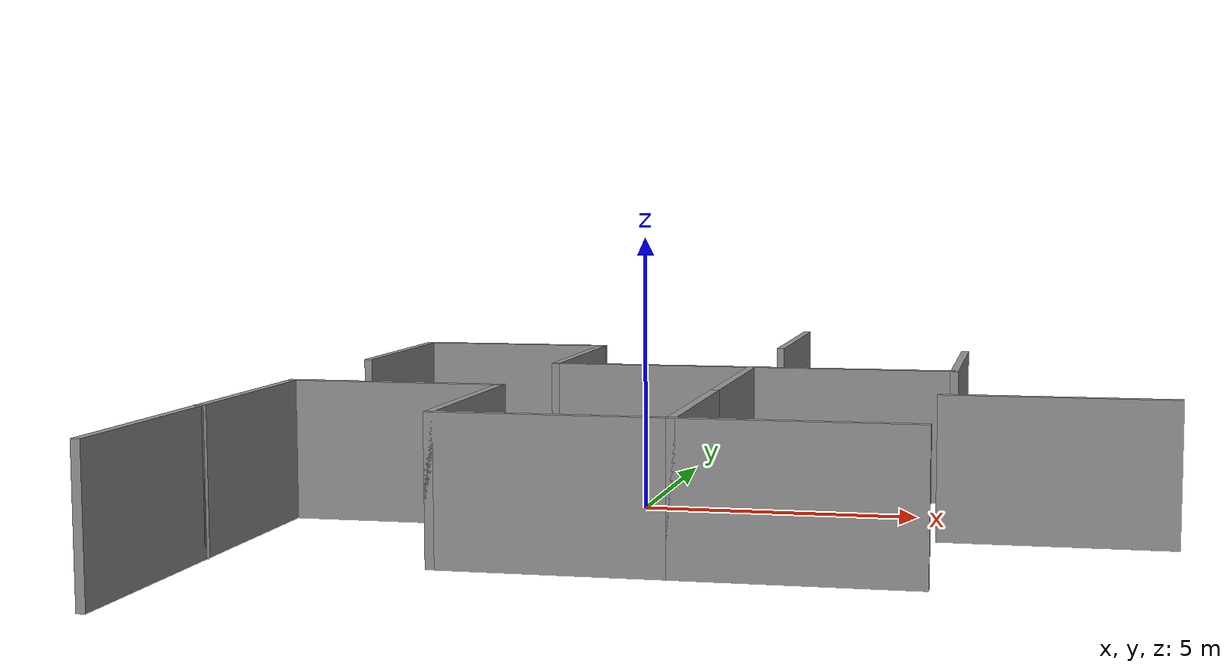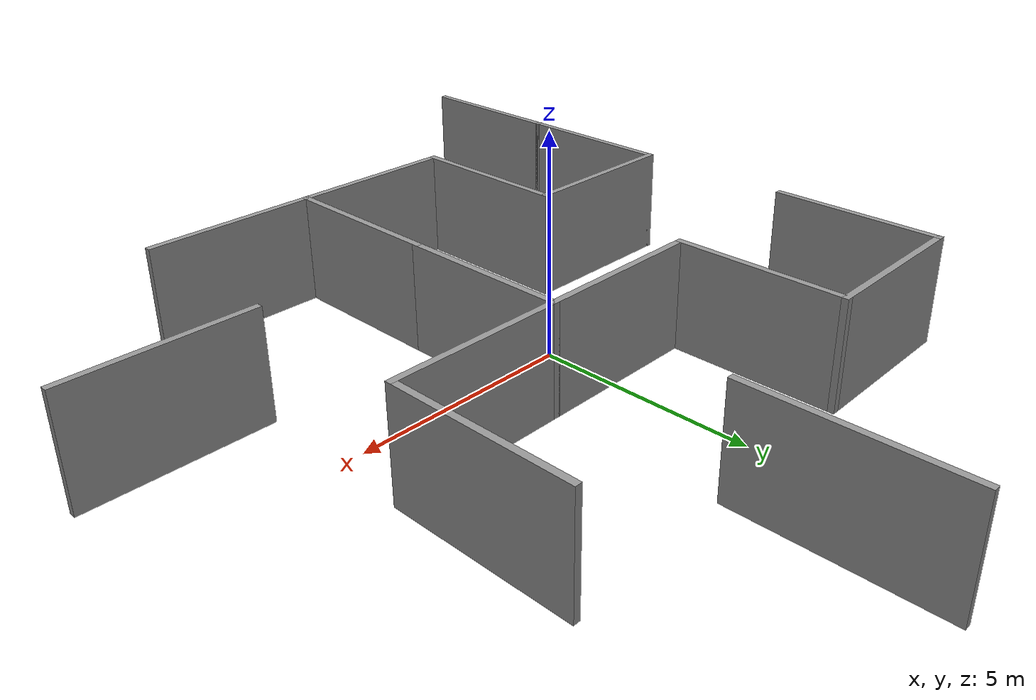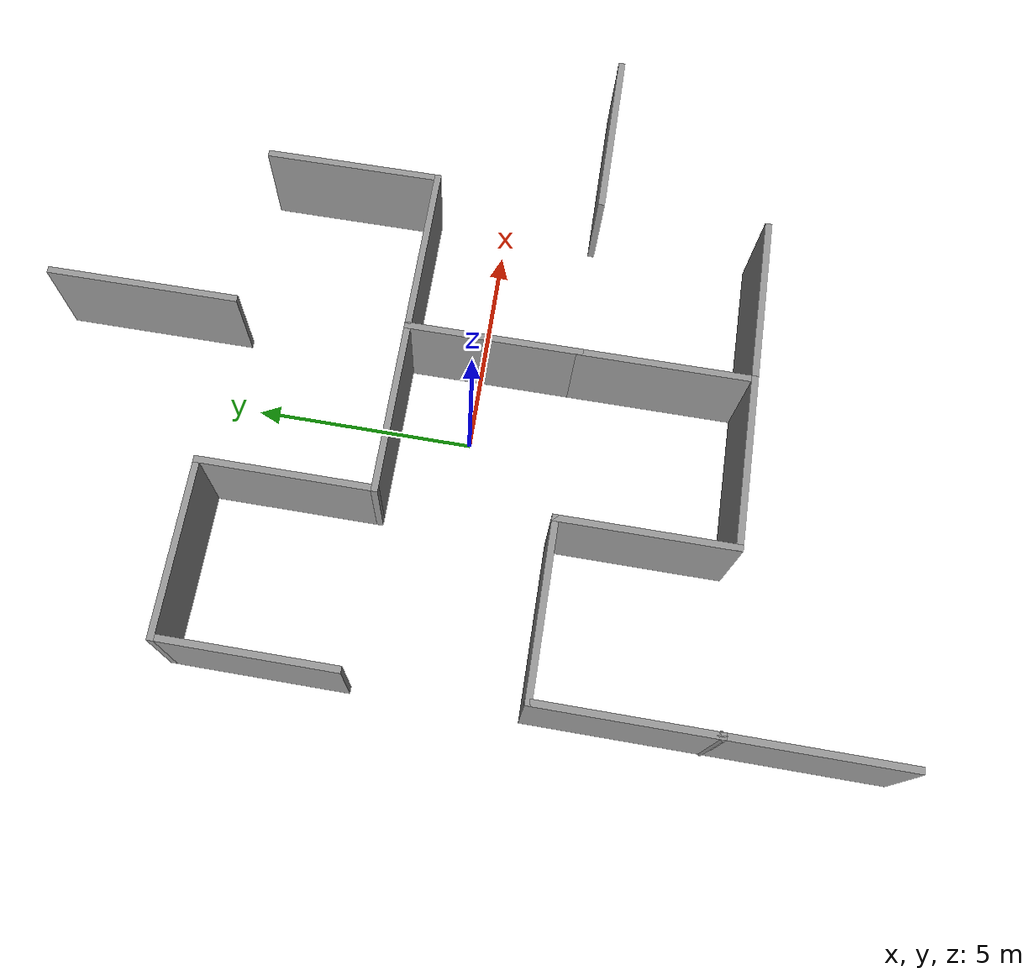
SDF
<?xml version='1.0'?>
<sdf version='1.6'>
  <model name='big_maze'>
    <pose frame=''>1.67513 0.024026 0 0 -0 0</pose>
    <link name='Wall_20'>
      <collision name='Wall_20_Collision'>
        <geometry>
          <box>
            <size>4 0.15 2.5</size>
          </box>
        </geometry>
        <pose frame=''>0 0 1.25 0 -0 0</pose>
      </collision>
      <visual name='Wall_20_Visual'>
        <pose frame=''>0 0 1.25 0 -0 0</pose>
        <geometry>
          <box>
            <size>4 0.15 2.5</size>
          </box>
        </geometry>
        <material>
          <script>
            <uri>file://media/materials/scripts/gazebo.material</uri>
            <name>Gazebo/Grey</name>
          </script>
          <ambient>1 1 1 1</ambient>
        </material>
      </visual>
      <pose frame=''>-7.6804 -4.1 0 0 -0 1.5708</pose>
    </link>
    <link name='Wall_21'>
      <collision name='Wall_21_Collision'>
        <geometry>
          <box>
            <size>4 0.15 2.5</size>
          </box>
        </geometry>
        <pose frame=''>0 0 1.25 0 -0 0</pose>
      </collision>
      <visual name='Wall_21_Visual'>
        <pose frame=''>0 0 1.25 0 -0 0</pose>
        <geometry>
          <box>
            <size>4 0.15 2.5</size>
          </box>
        </geometry>
        <material>
          <script>
            <uri>file://media/materials/scripts/gazebo.material</uri>
            <name>Gazebo/Grey</name>
          </script>
          <ambient>1 1 1 1</ambient>
        </material>
      </visual>
      <pose frame=''>-5.7554 -2.175 0 0 -0 0</pose>
    </link>
    <link name='Wall_22'>
      <collision name='Wall_22_Collision'>
        <geometry>
          <box>
            <size>4 0.15 2.5</size>
          </box>
        </geometry>
        <pose frame=''>0 0 1.25 0 -0 0</pose>
      </collision>
      <visual name='Wall_22_Visual'>
        <pose frame=''>0 0 1.25 0 -0 0</pose>
        <geometry>
          <box>
            <size>4 0.15 2.5</size>
          </box>
        </geometry>
        <material>
          <script>
            <uri>file://media/materials/scripts/gazebo.material</uri>
            <name>Gazebo/Grey</name>
          </script>
          <ambient>1 1 1 1</ambient>
        </material>
      </visual>
      <pose frame=''>-3.8304 -4.1 0 0 0 -1.5708</pose>
    </link>
    <link name='Wall_23'>
      <collision name='Wall_23_Collision'>
        <geometry>
          <box>
            <size>4 0.15 2.5</size>
          </box>
        </geometry>
        <pose frame=''>0 0 1.25 0 -0 0</pose>
      </collision>
      <visual name='Wall_23_Visual'>
        <pose frame=''>0 0 1.25 0 -0 0</pose>
        <geometry>
          <box>
            <size>4 0.15 2.5</size>
          </box>
        </geometry>
        <material>
          <script>
            <uri>file://media/materials/scripts/gazebo.material</uri>
            <name>Gazebo/Grey</name>
          </script>
          <ambient>1 1 1 1</ambient>
        </material>
      </visual>
      <pose frame=''>-1.9054 -6.025 0 0 -0 0</pose>
    </link>
    <link name='Wall_24'>
      <collision name='Wall_24_Collision'>
        <geometry>
          <box>
            <size>4 0.15 2.5</size>
          </box>
        </geometry>
        <pose frame=''>0 0 1.25 0 -0 0</pose>
      </collision>
      <visual name='Wall_24_Visual'>
        <pose frame=''>0 0 1.25 0 -0 0</pose>
        <geometry>
          <box>
            <size>4 0.15 2.5</size>
          </box>
        </geometry>
        <material>
          <script>
            <uri>file://media/materials/scripts/gazebo.material</uri>
            <name>Gazebo/Grey</name>
          </script>
          <ambient>1 1 1 1</ambient>
        </material>
      </visual>
      <pose frame=''>0.019597 -4.1 0 0 -0 1.5708</pose>
    </link>
    <link name='Wall_25'>
      <collision name='Wall_25_Collision'>
        <geometry>
          <box>
            <size>4 0.15 2.5</size>
          </box>
        </geometry>
        <pose frame=''>0 0 1.25 0 -0 0</pose>
      </collision>
      <visual name='Wall_25_Visual'>
        <pose frame=''>0 0 1.25 0 -0 0</pose>
        <geometry>
          <box>
            <size>4 0.15 2.5</size>
          </box>
        </geometry>
        <material>
          <script>
            <uri>file://media/materials/scripts/gazebo.material</uri>
            <name>Gazebo/Grey</name>
          </script>
          <ambient>1 1 1 1</ambient>
        </material>
      </visual>
      <pose frame=''>0.019597 -0.25 0 0 -0 1.5708</pose>
    </link>
    <link name='Wall_27'>
      <collision name='Wall_27_Collision'>
        <geometry>
          <box>
            <size>4 0.15 2.5</size>
          </box>
        </geometry>
        <pose frame=''>0 0 1.25 0 -0 0</pose>
      </collision>
      <visual name='Wall_27_Visual'>
        <pose frame=''>0 0 1.25 0 -0 0</pose>
        <geometry>
          <box>
            <size>4 0.15 2.5</size>
          </box>
        </geometry>
        <material>
          <script>
            <uri>file://media/materials/scripts/gazebo.material</uri>
            <name>Gazebo/Grey</name>
          </script>
          <ambient>1 1 1 1</ambient>
        </material>
      </visual>
      <pose frame=''>-1.9054 1.675 0 0 -0 3.14159</pose>
    </link>
    <link name='Wall_29'>
      <collision name='Wall_29_Collision'>
        <geometry>
          <box>
            <size>4 0.15 2.5</size>
          </box>
        </geometry>
        <pose frame=''>0 0 1.25 0 -0 0</pose>
      </collision>
      <visual name='Wall_29_Visual'>
        <pose frame=''>0 0 1.25 0 -0 0</pose>
        <geometry>
          <box>
            <size>4 0.15 2.5</size>
          </box>
        </geometry>
        <material>
          <script>
            <uri>file://media/materials/scripts/gazebo.material</uri>
            <name>Gazebo/Grey</name>
          </script>
          <ambient>1 1 1 1</ambient>
        </material>
      </visual>
      <pose frame=''>1.9446 -6.025 0 0 -0 0</pose>
    </link>
    <link name='Wall_31'>
      <collision name='Wall_31_Collision'>
        <geometry>
          <box>
            <size>4 0.15 2.5</size>
          </box>
        </geometry>
        <pose frame=''>0 0 1.25 0 -0 0</pose>
      </collision>
      <visual name='Wall_31_Visual'>
        <pose frame=''>0 0 1.25 0 -0 0</pose>
        <geometry>
          <box>
            <size>4 0.15 2.5</size>
          </box>
        </geometry>
        <material>
          <script>
            <uri>file://media/materials/scripts/gazebo.material</uri>
            <name>Gazebo/Grey</name>
          </script>
          <ambient>1 1 1 1</ambient>
        </material>
      </visual>
      <pose frame=''>5.7946 -2.175 0 0 -0 0</pose>
    </link>
    <link name='Wall_33'>
      <collision name='Wall_33_Collision'>
        <geometry>
          <box>
            <size>4 0.15 2.5</size>
          </box>
        </geometry>
        <pose frame=''>0 0 1.25 0 -0 0</pose>
      </collision>
      <visual name='Wall_33_Visual'>
        <pose frame=''>0 0 1.25 0 -0 0</pose>
        <geometry>
          <box>
            <size>4 0.15 2.5</size>
          </box>
        </geometry>
        <material>
          <script>
            <uri>file://media/materials/scripts/gazebo.material</uri>
            <name>Gazebo/Grey</name>
          </script>
          <ambient>1 1 1 1</ambient>
        </material>
      </visual>
      <pose frame=''>1.9446 1.675 0 0 -0 0</pose>
    </link>
    <link name='Wall_35'>
      <collision name='Wall_35_Collision'>
        <geometry>
          <box>
            <size>4.10554 0.15 2.5</size>
          </box>
        </geometry>
        <pose frame=''>0 0 1.25 0 -0 0</pose>
      </collision>
      <visual name='Wall_35_Visual'>
        <pose frame=''>0 0 1.25 0 -0 0</pose>
        <geometry>
          <box>
            <size>4.10554 0.15 2.5</size>
          </box>
        </geometry>
        <material>
          <script>
            <uri>file://media/materials/scripts/gazebo.material</uri>
            <name>Gazebo/Grey</name>
          </script>
          <ambient>1 1 1 1</ambient>
        </material>
      </visual>
      <pose frame=''>3.8696 3.65277 0 0 -0 1.5708</pose>
    </link>
    <link name='Wall_37'>
      <collision name='Wall_37_Collision'>
        <geometry>
          <box>
            <size>4.39446 0.15 2.5</size>
          </box>
        </geometry>
        <pose frame=''>0 0 1.25 0 -0 0</pose>
      </collision>
      <visual name='Wall_37_Visual'>
        <pose frame=''>0 0 1.25 0 -0 0</pose>
        <geometry>
          <box>
            <size>4.39446 0.15 2.5</size>
          </box>
        </geometry>
        <material>
          <script>
            <uri>file://media/materials/scripts/gazebo.material</uri>
            <name>Gazebo/Grey</name>
          </script>
          <ambient>1 1 1 1</ambient>
        </material>
      </visual>
      <pose frame=''>0.019597 7.75277 0 0 -0 1.5708</pose>
    </link>
    <link name='Wall_39'>
      <collision name='Wall_39_Collision'>
        <geometry>
          <box>
            <size>4 0.15 2.5</size>
          </box>
        </geometry>
        <pose frame=''>0 0 1.25 0 -0 0</pose>
      </collision>
      <visual name='Wall_39_Visual'>
        <pose frame=''>0 0 1.25 0 -0 0</pose>
        <geometry>
          <box>
            <size>4 0.15 2.5</size>
          </box>
        </geometry>
        <material>
          <script>
            <uri>file://media/materials/scripts/gazebo.material</uri>
            <name>Gazebo/Grey</name>
          </script>
          <ambient>1 1 1 1</ambient>
        </material>
      </visual>
      <pose frame=''>-3.8304 3.6 0 0 -0 1.5708</pose>
    </link>
    <link name='Wall_4'>
      <collision name='Wall_4_Collision'>
        <geometry>
          <box>
            <size>0.163988 0.15 2.5</size>
          </box>
        </geometry>
        <pose frame=''>0 0 1.25 0 -0 0</pose>
      </collision>
      <visual name='Wall_4_Visual'>
        <pose frame=''>0 0 1.25 0 -0 0</pose>
        <geometry>
          <box>
            <size>0.163988 0.15 2.5</size>
          </box>
        </geometry>
        <material>
          <script>
            <uri>file://media/materials/scripts/gazebo.material</uri>
            <name>Gazebo/Grey</name>
          </script>
          <ambient>1 1 1 1</ambient>
        </material>
      </visual>
      <pose frame=''>-7.68478 -6.01034 0 0 -0 0.894407</pose>
    </link>
    <link name='Wall_40'>
      <collision name='Wall_40_Collision'>
        <geometry>
          <box>
            <size>4 0.15 2.5</size>
          </box>
        </geometry>
        <pose frame=''>0 0 1.25 0 -0 0</pose>
      </collision>
      <visual name='Wall_40_Visual'>
        <pose frame=''>0 0 1.25 0 -0 0</pose>
        <geometry>
          <box>
            <size>4 0.15 2.5</size>
          </box>
        </geometry>
        <material>
          <script>
            <uri>file://media/materials/scripts/gazebo.material</uri>
            <name>Gazebo/Grey</name>
          </script>
          <ambient>1 1 1 1</ambient>
        </material>
      </visual>
      <pose frame=''>-5.7554 5.525 0 0 -0 3.14159</pose>
    </link>
    <link name='Wall_41'>
      <collision name='Wall_41_Collision'>
        <geometry>
          <box>
            <size>4 0.15 2.5</size>
          </box>
        </geometry>
        <pose frame=''>0 0 1.25 0 -0 0</pose>
      </collision>
      <visual name='Wall_41_Visual'>
        <pose frame=''>0 0 1.25 0 -0 0</pose>
        <geometry>
          <box>
            <size>4 0.15 2.5</size>
          </box>
        </geometry>
        <material>
          <script>
            <uri>file://media/materials/scripts/gazebo.material</uri>
            <name>Gazebo/Grey</name>
          </script>
          <ambient>1 1 1 1</ambient>
        </material>
      </visual>
      <pose frame=''>-7.6804 3.6 0 0 0 -1.5708</pose>
    </link>
    <link name='Wall_43'>
      <collision name='Wall_43_Collision'>
        <geometry>
          <box>
            <size>4 0.15 2.5</size>
          </box>
        </geometry>
        <pose frame=''>0 0 1.25 0 -0 0</pose>
      </collision>
      <visual name='Wall_43_Visual'>
        <pose frame=''>0 0 1.25 0 -0 0</pose>
        <geometry>
          <box>
            <size>4 0.15 2.5</size>
          </box>
        </geometry>
        <material>
          <script>
            <uri>file://media/materials/scripts/gazebo.material</uri>
            <name>Gazebo/Grey</name>
          </script>
          <ambient>1 1 1 1</ambient>
        </material>
      </visual>
      <pose frame=''>-7.6804 -7.95 0 0 0 -1.5708</pose>
    </link>
    <static>1</static>
  </model>
</sdf>
